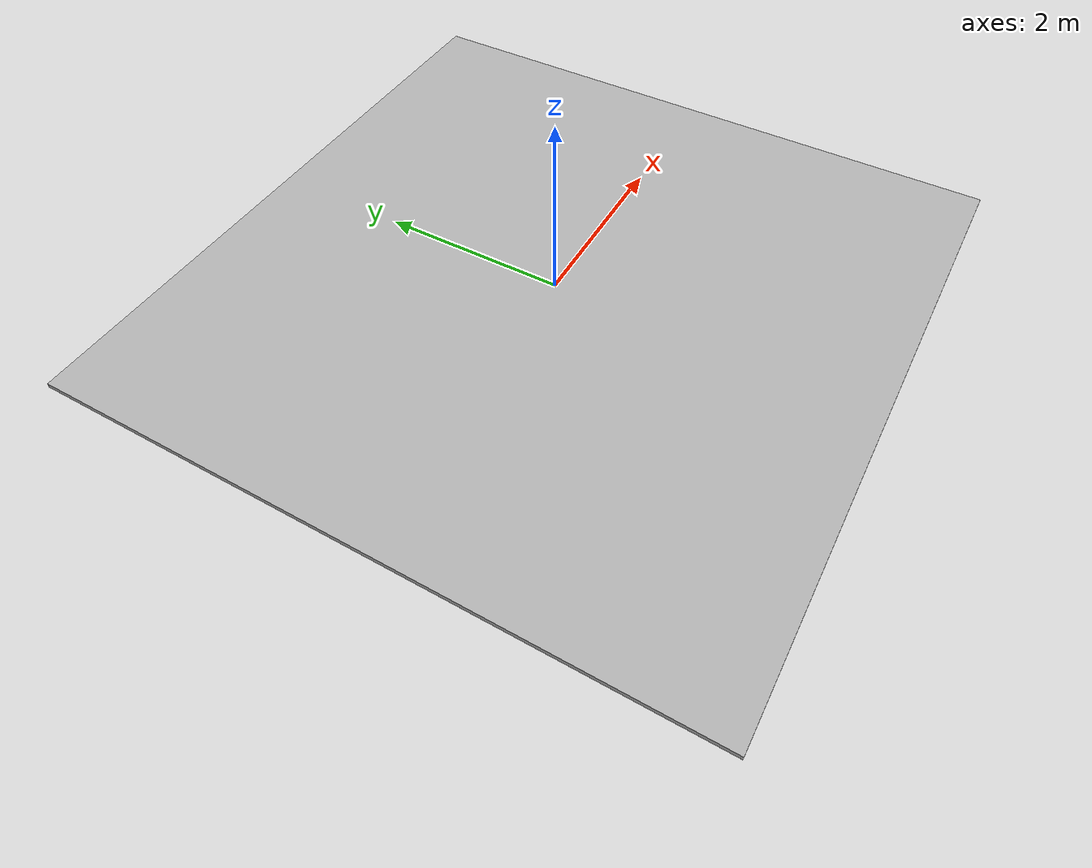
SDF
<?xml version='1.0'?>
<sdf version='1.6'>
  <model name="right_curve_r350_a90_o20">
      <static>true</static>
      <link name='link'>
        <collision name='collision'>
          <geometry>
         <box>
            <size>7 7 0.05</size>
          </box>
          </geometry>
          <surface>
            <friction>
              <ode>
                <mu>100</mu>
                <mu2>50</mu2>
              </ode>
            </friction>
          </surface>
        </collision>
        <visual name='visual'>
          <cast_shadows>0</cast_shadows>
          <geometry>
         <box>
            <size>7 7 0.05</size>
          </box>
          </geometry>
          <material>
            <script>
              <uri>model://right_curve_r350_a90_o20/materials/scripts</uri>
              <uri>model://right_curve_r350_a90_o20/materials/textures/</uri>
              <name>right_curve_r350_a90_o20/Image</name>
            </script>
          </material>
        </visual>
      </link>
  </model>
</sdf>
